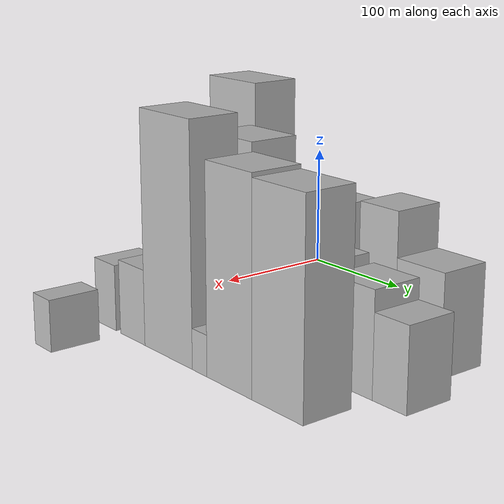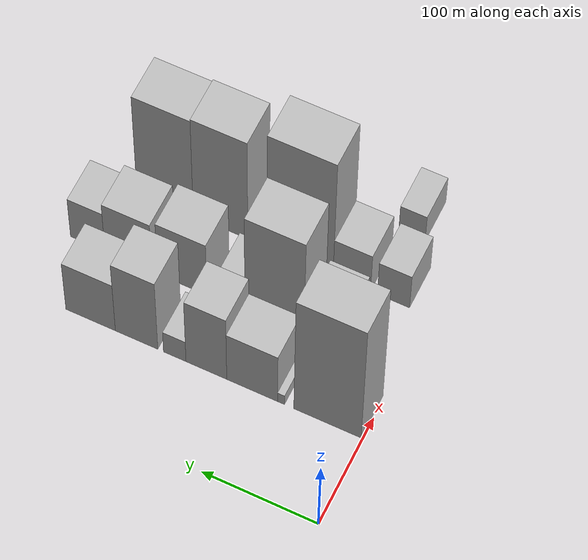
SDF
<sdf version="1.6">
 <world name="default">
  <model name="building_28">
   <static>1</static>
   <pose>100.0000 30.4601 0 0.000000 0.000000 0.000000</pose>
   <link name="link">
    <pose>0 0 88.50 0 0 0</pose>
    <collision name="collision"><geometry><box><size>40.0000 58.0119 177.0000</size></box></geometry></collision>
    <visual name="visual">
     <cast_shadows>0</cast_shadows>
     <geometry><box><size>40.0000 58.0119 177.0000</size></box></geometry>
     <material>
      <script>
       <uri>model://HANNAS_wall/materials/scripts</uri>
       <uri>model://HANNAS_wall/materials/textures</uri>
       <name>vrc/HANNAS_wall</name>
      </script>
     </material>
    </visual>
   </link>
  </model>
  <model name="building_29">
   <static>1</static>
   <pose>100.0000 70.5219 0 0.000000 0.000000 0.000000</pose>
   <link name="link">
    <pose>0 0 7.50 0 0 0</pose>
    <collision name="collision"><geometry><box><size>40.0000 6.1116 15.0000</size></box></geometry></collision>
    <visual name="visual">
     <cast_shadows>0</cast_shadows>
     <geometry><box><size>40.0000 6.1116 15.0000</size></box></geometry>
     <material>
      <script>
       <uri>model://HANNAS_wall/materials/scripts</uri>
       <uri>model://HANNAS_wall/materials/textures</uri>
       <name>vrc/HANNAS_wall</name>
      </script>
     </material>
    </visual>
   </link>
  </model>
  <model name="building_30">
   <static>1</static>
   <pose>100.0000 95.6432 0 0.000000 0.000000 0.000000</pose>
   <link name="link">
    <pose>0 0 37.50 0 0 0</pose>
    <collision name="collision"><geometry><box><size>40.0000 44.1311 75.0000</size></box></geometry></collision>
    <visual name="visual">
     <cast_shadows>0</cast_shadows>
     <geometry><box><size>40.0000 44.1311 75.0000</size></box></geometry>
     <material>
      <script>
       <uri>model://HANNAS_wall/materials/scripts</uri>
       <uri>model://HANNAS_wall/materials/textures</uri>
       <name>vrc/HANNAS_wall</name>
      </script>
     </material>
    </visual>
   </link>
  </model>
  <model name="building_31">
   <static>1</static>
   <pose>100.0000 135.5213 0 0.000000 0.000000 0.000000</pose>
   <link name="link">
    <pose>0 0 49.50 0 0 0</pose>
    <collision name="collision"><geometry><box><size>40.0000 35.6252 99.0000</size></box></geometry></collision>
    <visual name="visual">
     <cast_shadows>0</cast_shadows>
     <geometry><box><size>40.0000 35.6252 99.0000</size></box></geometry>
     <material>
      <script>
       <uri>model://HANNAS_wall/materials/scripts</uri>
       <uri>model://HANNAS_wall/materials/textures</uri>
       <name>vrc/HANNAS_wall</name>
      </script>
     </material>
    </visual>
   </link>
  </model>
  <model name="building_32">
   <static>1</static>
   <pose>100.0000 163.1861 0 0.000000 0.000000 0.000000</pose>
   <link name="link">
    <pose>0 0 16.50 0 0 0</pose>
    <collision name="collision"><geometry><box><size>40.0000 19.7042 33.0000</size></box></geometry></collision>
    <visual name="visual">
     <cast_shadows>0</cast_shadows>
     <geometry><box><size>40.0000 19.7042 33.0000</size></box></geometry>
     <material>
      <script>
       <uri>model://HANNAS_wall/materials/scripts</uri>
       <uri>model://HANNAS_wall/materials/textures</uri>
       <name>vrc/HANNAS_wall</name>
      </script>
     </material>
    </visual>
   </link>
  </model>
  <model name="building_33">
   <static>1</static>
   <pose>100.0000 196.7859 0 0.000000 0.000000 0.000000</pose>
   <link name="link">
    <pose>0 0 54.00 0 0 0</pose>
    <collision name="collision"><geometry><box><size>40.0000 37.4955 108.0000</size></box></geometry></collision>
    <visual name="visual">
     <cast_shadows>0</cast_shadows>
     <geometry><box><size>40.0000 37.4955 108.0000</size></box></geometry>
     <material>
      <script>
       <uri>model://HANNAS_wall/materials/scripts</uri>
       <uri>model://HANNAS_wall/materials/textures</uri>
       <name>vrc/HANNAS_wall</name>
      </script>
     </material>
    </visual>
   </link>
  </model>
  <model name="building_34">
   <static>1</static>
   <pose>100.0000 237.4932 0 0.000000 0.000000 0.000000</pose>
   <link name="link">
    <pose>0 0 37.50 0 0 0</pose>
    <collision name="collision"><geometry><box><size>40.0000 43.9191 75.0000</size></box></geometry></collision>
    <visual name="visual">
     <cast_shadows>0</cast_shadows>
     <geometry><box><size>40.0000 43.9191 75.0000</size></box></geometry>
     <material>
      <script>
       <uri>model://HANNAS_wall/materials/scripts</uri>
       <uri>model://HANNAS_wall/materials/textures</uri>
       <name>vrc/HANNAS_wall</name>
      </script>
     </material>
    </visual>
   </link>
  </model>
  <model name="building_90">
   <static>1</static>
   <pose>160.0000 59.5965 0 0.000000 0.000000 0.000000</pose>
   <link name="link">
    <pose>0 0 31.50 0 0 0</pose>
    <collision name="collision"><geometry><box><size>40.0000 33.8365 63.0000</size></box></geometry></collision>
    <visual name="visual">
     <cast_shadows>0</cast_shadows>
     <geometry><box><size>40.0000 33.8365 63.0000</size></box></geometry>
     <material>
      <script>
       <uri>model://HANNAS_wall/materials/scripts</uri>
       <uri>model://HANNAS_wall/materials/textures</uri>
       <name>vrc/HANNAS_wall</name>
      </script>
     </material>
    </visual>
   </link>
  </model>
  <model name="building_91">
   <static>1</static>
   <pose>160.0000 105.3599 0 0.000000 0.000000 0.000000</pose>
   <link name="link">
    <pose>0 0 75.00 0 0 0</pose>
    <collision name="collision"><geometry><box><size>40.0000 51.6903 150.0000</size></box></geometry></collision>
    <visual name="visual">
     <cast_shadows>0</cast_shadows>
     <geometry><box><size>40.0000 51.6903 150.0000</size></box></geometry>
     <material>
      <script>
       <uri>model://HANNAS_wall/materials/scripts</uri>
       <uri>model://HANNAS_wall/materials/textures</uri>
       <name>vrc/HANNAS_wall</name>
      </script>
     </material>
    </visual>
   </link>
  </model>
  <model name="building_92">
   <static>1</static>
   <pose>160.0000 142.9962 0 0.000000 0.000000 0.000000</pose>
   <link name="link">
    <pose>0 0 22.50 0 0 0</pose>
    <collision name="collision"><geometry><box><size>40.0000 23.5823 45.0000</size></box></geometry></collision>
    <visual name="visual">
     <cast_shadows>0</cast_shadows>
     <geometry><box><size>40.0000 23.5823 45.0000</size></box></geometry>
     <material>
      <script>
       <uri>model://HANNAS_wall/materials/scripts</uri>
       <uri>model://HANNAS_wall/materials/textures</uri>
       <name>vrc/HANNAS_wall</name>
      </script>
     </material>
    </visual>
   </link>
  </model>
  <model name="building_93">
   <static>1</static>
   <pose>160.0000 186.6485 0 0.000000 0.000000 0.000000</pose>
   <link name="link">
    <pose>0 0 40.50 0 0 0</pose>
    <collision name="collision"><geometry><box><size>40.0000 43.7223 81.0000</size></box></geometry></collision>
    <visual name="visual">
     <cast_shadows>0</cast_shadows>
     <geometry><box><size>40.0000 43.7223 81.0000</size></box></geometry>
     <material>
      <script>
       <uri>model://HANNAS_wall/materials/scripts</uri>
       <uri>model://HANNAS_wall/materials/textures</uri>
       <name>vrc/HANNAS_wall</name>
      </script>
     </material>
    </visual>
   </link>
  </model>
  <model name="building_94">
   <static>1</static>
   <pose>160.0000 234.5691 0 0.000000 0.000000 0.000000</pose>
   <link name="link">
    <pose>0 0 37.50 0 0 0</pose>
    <collision name="collision"><geometry><box><size>40.0000 42.1190 75.0000</size></box></geometry></collision>
    <visual name="visual">
     <cast_shadows>0</cast_shadows>
     <geometry><box><size>40.0000 42.1190 75.0000</size></box></geometry>
     <material>
      <script>
       <uri>model://HANNAS_wall/materials/scripts</uri>
       <uri>model://HANNAS_wall/materials/textures</uri>
       <name>vrc/HANNAS_wall</name>
      </script>
     </material>
    </visual>
   </link>
  </model>
  <model name="building_95">
   <static>1</static>
   <pose>160.0000 271.0334 0 0.000000 0.000000 0.000000</pose>
   <link name="link">
    <pose>0 0 30.00 0 0 0</pose>
    <collision name="collision"><geometry><box><size>40.0000 30.8096 60.0000</size></box></geometry></collision>
    <visual name="visual">
     <cast_shadows>0</cast_shadows>
     <geometry><box><size>40.0000 30.8096 60.0000</size></box></geometry>
     <material>
      <script>
       <uri>model://HANNAS_wall/materials/scripts</uri>
       <uri>model://HANNAS_wall/materials/textures</uri>
       <name>vrc/HANNAS_wall</name>
      </script>
     </material>
    </visual>
   </link>
  </model>
  <model name="building_145">
   <static>1</static>
   <pose>220.0000 29.4233 0 0.000000 0.000000 0.000000</pose>
   <link name="link">
    <pose>0 0 25.50 0 0 0</pose>
    <collision name="collision"><geometry><box><size>40.0000 28.0566 51.0000</size></box></geometry></collision>
    <visual name="visual">
     <cast_shadows>0</cast_shadows>
     <geometry><box><size>40.0000 28.0566 51.0000</size></box></geometry>
     <material>
      <script>
       <uri>model://HANNAS_wall/materials/scripts</uri>
       <uri>model://HANNAS_wall/materials/textures</uri>
       <name>vrc/HANNAS_wall</name>
      </script>
     </material>
    </visual>
   </link>
  </model>
  <model name="building_146">
   <static>1</static>
   <pose>220.0000 65.8892 0 0.000000 0.000000 0.000000</pose>
   <link name="link">
    <pose>0 0 28.50 0 0 0</pose>
    <collision name="collision"><geometry><box><size>40.0000 32.8753 57.0000</size></box></geometry></collision>
    <visual name="visual">
     <cast_shadows>0</cast_shadows>
     <geometry><box><size>40.0000 32.8753 57.0000</size></box></geometry>
     <material>
      <script>
       <uri>model://HANNAS_wall/materials/scripts</uri>
       <uri>model://HANNAS_wall/materials/textures</uri>
       <name>vrc/HANNAS_wall</name>
      </script>
     </material>
    </visual>
   </link>
  </model>
  <model name="building_147">
   <static>1</static>
   <pose>220.0000 111.6939 0 0.000000 0.000000 0.000000</pose>
   <link name="link">
    <pose>0 0 87.00 0 0 0</pose>
    <collision name="collision"><geometry><box><size>40.0000 58.7341 174.0000</size></box></geometry></collision>
    <visual name="visual">
     <cast_shadows>0</cast_shadows>
     <geometry><box><size>40.0000 58.7341 174.0000</size></box></geometry>
     <material>
      <script>
       <uri>model://HANNAS_wall/materials/scripts</uri>
       <uri>model://HANNAS_wall/materials/textures</uri>
       <name>vrc/HANNAS_wall</name>
      </script>
     </material>
    </visual>
   </link>
  </model>
  <model name="building_148">
   <static>1</static>
   <pose>220.0000 149.5195 0 0.000000 0.000000 0.000000</pose>
   <link name="link">
    <pose>0 0 15.00 0 0 0</pose>
    <collision name="collision"><geometry><box><size>40.0000 16.9172 30.0000</size></box></geometry></collision>
    <visual name="visual">
     <cast_shadows>0</cast_shadows>
     <geometry><box><size>40.0000 16.9172 30.0000</size></box></geometry>
     <material>
      <script>
       <uri>model://HANNAS_wall/materials/scripts</uri>
       <uri>model://HANNAS_wall/materials/textures</uri>
       <name>vrc/HANNAS_wall</name>
      </script>
     </material>
    </visual>
   </link>
  </model>
  <model name="building_149">
   <static>1</static>
   <pose>220.0000 182.3104 0 0.000000 0.000000 0.000000</pose>
   <link name="link">
    <pose>0 0 75.00 0 0 0</pose>
    <collision name="collision"><geometry><box><size>40.0000 48.6646 150.0000</size></box></geometry></collision>
    <visual name="visual">
     <cast_shadows>0</cast_shadows>
     <geometry><box><size>40.0000 48.6646 150.0000</size></box></geometry>
     <material>
      <script>
       <uri>model://HANNAS_wall/materials/scripts</uri>
       <uri>model://HANNAS_wall/materials/textures</uri>
       <name>vrc/HANNAS_wall</name>
      </script>
     </material>
    </visual>
   </link>
  </model>
  <model name="building_150">
   <static>1</static>
   <pose>220.0000 231.9948 0 0.000000 0.000000 0.000000</pose>
   <link name="link">
    <pose>0 0 73.50 0 0 0</pose>
    <collision name="collision"><geometry><box><size>40.0000 50.7043 147.0000</size></box></geometry></collision>
    <visual name="visual">
     <cast_shadows>0</cast_shadows>
     <geometry><box><size>40.0000 50.7043 147.0000</size></box></geometry>
     <material>
      <script>
       <uri>model://HANNAS_wall/materials/scripts</uri>
       <uri>model://HANNAS_wall/materials/textures</uri>
       <name>vrc/HANNAS_wall</name>
      </script>
     </material>
    </visual>
   </link>
  </model>
  <model name="building_195">
   <static>1</static>
   <pose>280.0000 40.9045 0 0.000000 0.000000 0.000000</pose>
   <link name="link">
    <pose>0 0 19.50 0 0 0</pose>
    <collision name="collision"><geometry><box><size>40.0000 23.1820 39.0000</size></box></geometry></collision>
    <visual name="visual">
     <cast_shadows>0</cast_shadows>
     <geometry><box><size>40.0000 23.1820 39.0000</size></box></geometry>
     <material>
      <script>
       <uri>model://HANNAS_wall/materials/scripts</uri>
       <uri>model://HANNAS_wall/materials/textures</uri>
       <name>vrc/HANNAS_wall</name>
      </script>
     </material>
    </visual>
   </link>
  </model>
 </world>
</sdf>
